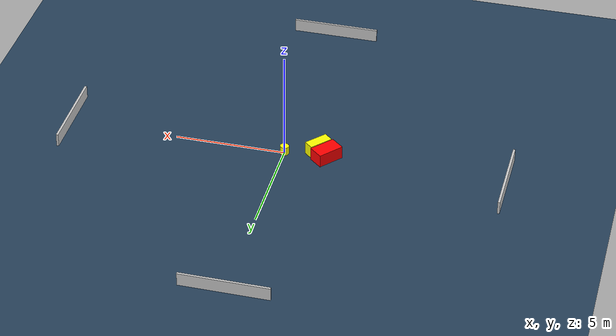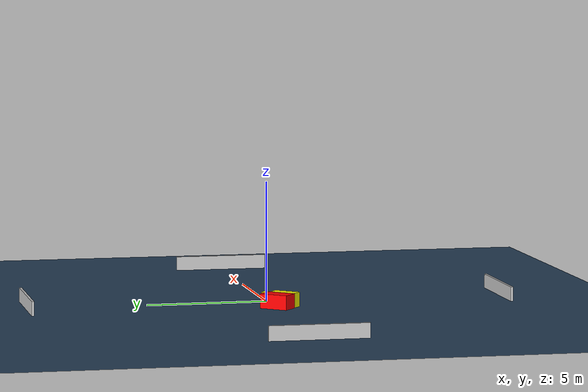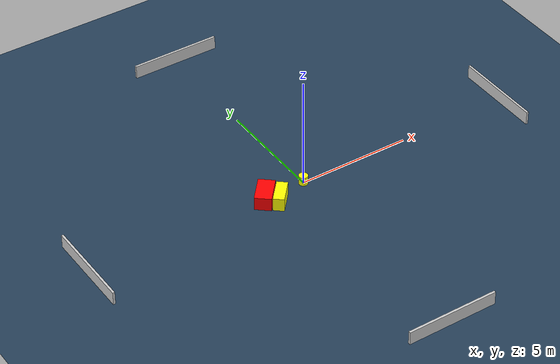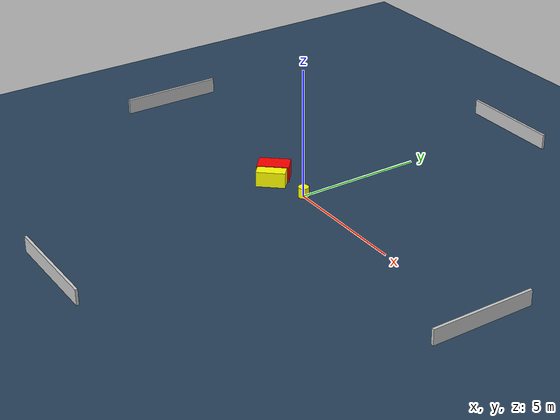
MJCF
<?xml version="1.0" ?>
<mujoco model="generated_environment">
  <option timestep="0.01" integrator="RK4" cone="elliptic"/>
  <default>
    <geom density="1"/>
  </default>
  <asset>
    <texture builtin="gradient" height="3072" name="skybox" rgb1="0.3 0.5 0.7" rgb2="0 0 0" type="skybox" width="512"/>
    <texture builtin="checker" height="300" name="groundplane" rgb1="0.2 0.3 0.4" rgb2="0.1 0.2 0.3" type="2d" width="300"/>
    <material name="groundplane" reflectance="0.2" texrepeat="5 5" texture="groundplane"/>
  </asset>
  <worldbody>
    <light dir="0 0 -1" directional="true" pos="0 0 1.5"/>
    <geom condim="3" friction="0.5 0.005 0.001" material="groundplane" name="floor" pos="0 0 0" size="0 0 0.05" type="plane"/>
    <body name="walls">
      <geom name="wall_1" condim="4" pos="-10.0 0.0 0.3" rgba="0.800000011920929 0.800000011920929 0.800000011920929 1.0" size="0.05 2.0 0.3" type="box"/>
      <geom name="wall_2" condim="4" pos="10.0 0.0 0.3" rgba="0.800000011920929 0.800000011920929 0.800000011920929 1.0" size="0.05 2.0 0.3" type="box"/>
      <geom name="wall_3" condim="4" pos="0.0 -10.0 0.3" rgba="0.800000011920929 0.800000011920929 0.800000011920929 1.0" size="2.0 0.05 0.3" type="box"/>
      <geom name="wall_4" condim="4" pos="0.0 10.0 0.3" rgba="0.800000011920929 0.800000011920929 0.800000011920929 1.0" size="2.0 0.05 0.3" type="box"/>
    </body>
    <body name="robot">
      <joint name="joint_x" type="slide" pos="0 0 0" axis="1 0 0"/>
      <joint name="joint_y" type="slide" pos="0 0 0" axis="0 1 0"/>
      <geom name="robot" type="cylinder" pos="0.0 0.0 0.2" size="0.2 0.2 0.0" mass="5.0" friction="1.0 0.005 0.0001" condim="4" rgba="1.0 1.0 0.0 1.0"/>
    </body>
    <body name="obstacle_1_movable">
      <geom name="obstacle_1_movable" condim="4" pos="-1.4339915631775868 -0.4837896951717538 0.3" euler="0 0 318.630420122765" friction="0.0 0.005 0.001" rgba="1.0 1.0 0.0 1.0" size="0.23604403726243595 0.5551263598723395 0.3" type="box" mass="0.1"/>
      <joint type="free"/>
    </body>
    <body name="obstacle_2_static">
      <geom name="obstacle_2_static" condim="4" pos="-1.907001965054751 -0.05936190623124107 0.3" euler="0 0 49.33515483328066" friction="0.0 0.005 0.001" rgba="1.0 0.0 0.0 1.0" size="0.6071912752276247 0.3578622327386589 0.3" type="box"/>
    </body>
  </worldbody>
  <actuator>
    <motor name="actuator_x" joint="joint_x" gear="1" ctrlrange="-1 1"/>
    <motor name="actuator_y" joint="joint_y" gear="1" ctrlrange="-1 1"/>
  </actuator>
</mujoco>
